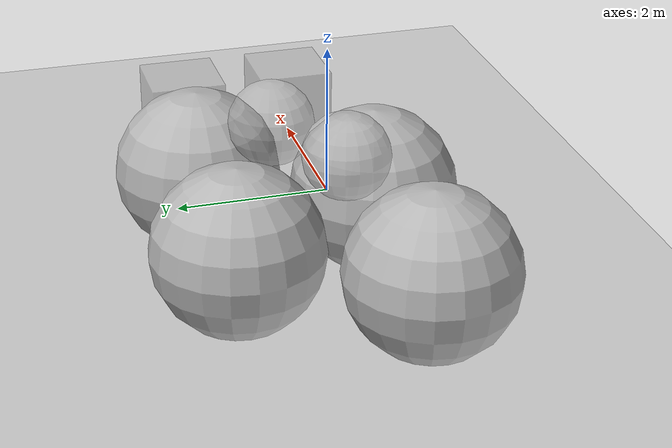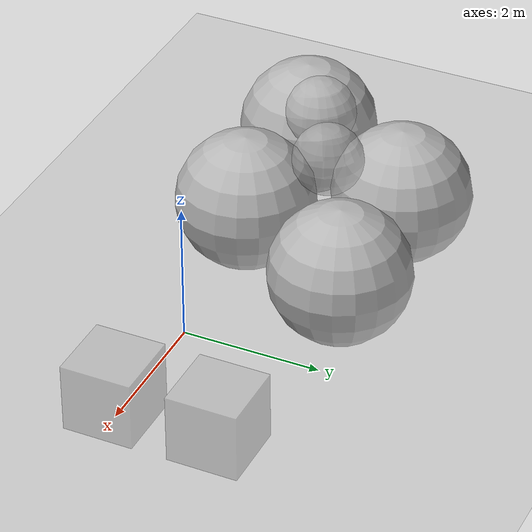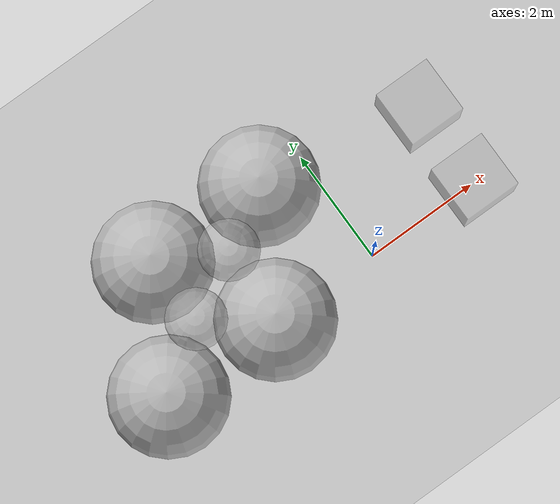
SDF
<?xml version="1.0" ?>
<sdf version="1.4">
  <world name="default">
    <include><uri>model://sun</uri></include>
    <include><uri>model://ground_plane</uri></include>
    <model name="sphere_min_depth_1cm">
      <pose>-3 0.66 2.0  0 0 0</pose>
      <allow_auto_disable>false</allow_auto_disable>
      <link name="link">
        <collision name="col">
          <geometry>
            <sphere><radius>0.5</radius></sphere>
          </geometry>
          <surface>
            <contact>
              <ode>
                <min_depth>0.01</min_depth>
              </ode>
            </contact>
            <friction>
              <ode>
                <mu>1</mu>
                <mu2>1</mu2>
              </ode>
            </friction>
          </surface>
        </collision>
        <visual name="vis">
          <transparency>0.5</transparency>
          <geometry>
            <sphere><radius>0.5</radius></sphere>
          </geometry>
        </visual>
      </link>
    </model>
    <model name="sphere_min_depth_default">
      <pose>-1.95 1.24 2.0  0 0 0</pose>
      <allow_auto_disable>false</allow_auto_disable>
      <link name="link">
        <collision name="col">
          <geometry>
            <sphere><radius>0.5</radius></sphere>
          </geometry>
          <surface>
            <contact>
              <ode>
              </ode>
            </contact>
            <friction>
              <ode>
                <mu>1</mu>
                <mu2>1</mu2>
              </ode>
            </friction>
          </surface>
        </collision>
        <visual name="vis">
          <transparency>0.5</transparency>
          <geometry>
            <sphere><radius>0.5</radius></sphere>
          </geometry>
        </visual>
      </link>
    </model>
    <model name="box_min_depth_1cm">
      <pose>2 0 0.5  0 0 0</pose>
      <allow_auto_disable>false</allow_auto_disable>
      <link name="link">
        <collision name="col">
          <geometry>
            <box><size>1 1 1</size></box>
          </geometry>
          <surface>
            <contact>
              <ode>
                <max_vel>0.00</max_vel>
                <min_depth>0.01</min_depth>
              </ode>
            </contact>
            <friction>
              <ode>
                <mu>1</mu>
                <mu2>1</mu2>
              </ode>
            </friction>
          </surface>
        </collision>
        <visual name="vis">
          <transparency>0.5</transparency>
          <geometry>
            <box><size>1 1 1</size></box>
          </geometry>
        </visual>
      </link>
    </model>
    <model name="box_min_depth_default">
      <pose>2 1.5 0.5  0 0 0</pose>
      <allow_auto_disable>false</allow_auto_disable>
      <link name="link">
        <collision name="col">
          <geometry>
            <box><size>1 1 1</size></box>
          </geometry>
          <surface>
            <contact>
              <ode>
              </ode>
            </contact>
            <friction>
              <ode>
                <mu>1</mu>
                <mu2>1</mu2>
              </ode>
            </friction>
          </surface>
        </collision>
        <visual name="vis">
          <transparency>0.5</transparency>
          <geometry>
            <box><size>1 1 1</size></box>
          </geometry>
        </visual>
      </link>
    </model>
    <model name="kinematic_coupling">
      <pose>-3 0 1.0  0 0 0</pose>
      <static>true</static>
      <link name="link1">
        <pose>1.05 0 0  0 0 0</pose>
        <collision name="sphere">
          <geometry>
            <sphere><radius>1.0</radius></sphere>
          </geometry>
          <surface>
            <contact>
              <ode>
                <min_depth>0.01</min_depth>
              </ode>
            </contact>
            <friction>
              <ode>
                <mu>1</mu>
                <mu2>1</mu2>
              </ode>
            </friction>
          </surface>
        </collision>
        <visual name="vis">
          <geometry>
            <sphere><radius>1.0</radius></sphere>
          </geometry>
        </visual>
      </link>
      <link name="link2">
        <pose>-1.05 0 0  0 0 0</pose>
        <collision name="sphere">
          <geometry>
            <sphere><radius>1.0</radius></sphere>
          </geometry>
          <surface>
            <contact>
              <ode>
                <min_depth>0.01</min_depth>
              </ode>
            </contact>
            <friction>
              <ode>
                <mu>1</mu>
                <mu2>1</mu2>
              </ode>
            </friction>
          </surface>
        </collision>
        <visual name="vis">
          <geometry>
            <sphere><radius>1.0</radius></sphere>
          </geometry>
        </visual>
      </link>
      <link name="link3">
        <pose>0 1.9 0  0 0 0</pose>
        <collision name="sphere">
          <geometry>
            <sphere><radius>1.0</radius></sphere>
          </geometry>
          <surface>
            <contact>
              <ode>
                <min_depth>0.01</min_depth>
              </ode>
            </contact>
            <friction>
              <ode>
                <mu>1</mu>
                <mu2>1</mu2>
              </ode>
            </friction>
          </surface>
        </collision>
        <visual name="vis">
          <geometry>
            <sphere><radius>1.0</radius></sphere>
          </geometry>
        </visual>
      </link>
      <link name="link4">
        <pose>2.1 1.9 0  0 0 0</pose>
        <collision name="sphere">
          <geometry>
            <sphere><radius>1.0</radius></sphere>
          </geometry>
          <surface>
            <contact>
              <ode>
                <min_depth>0.01</min_depth>
              </ode>
            </contact>
            <friction>
              <ode>
                <mu>1</mu>
                <mu2>1</mu2>
              </ode>
            </friction>
          </surface>
        </collision>
        <visual name="vis">
          <geometry>
            <sphere><radius>1.0</radius></sphere>
          </geometry>
        </visual>
      </link>
    </model>
    <gui fullscreen='0'>
      <camera name='user_camera'>
        <pose>-1.143380 -0.837949 7.142050  0.000000 1.263640 1.992190</pose>
        <view_controller>orbit</view_controller>
      </camera>
    </gui>
  </world>
</sdf>
